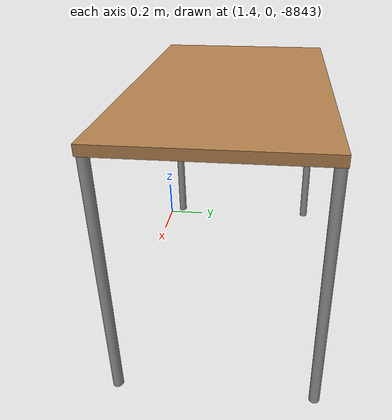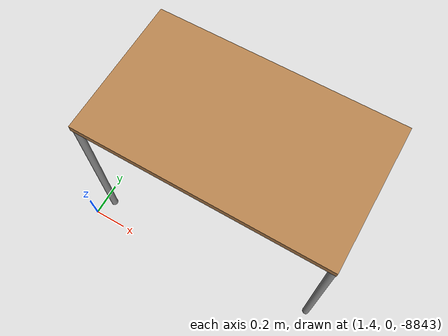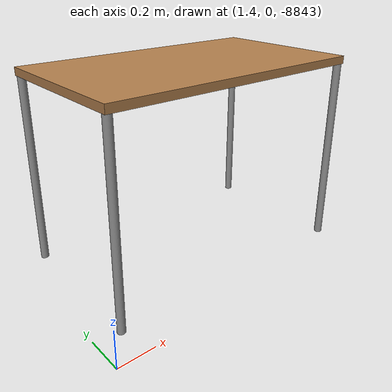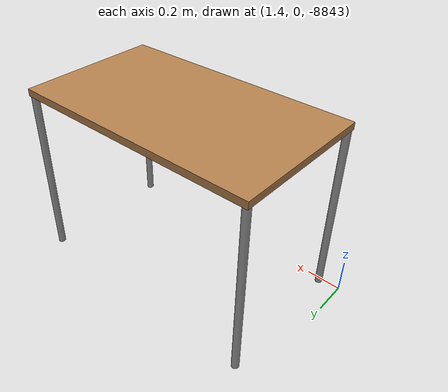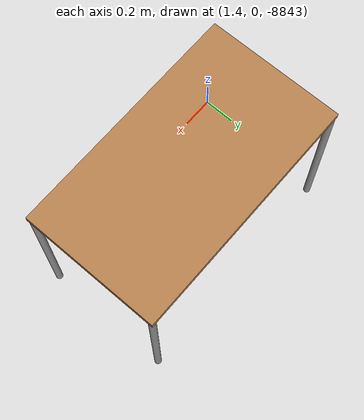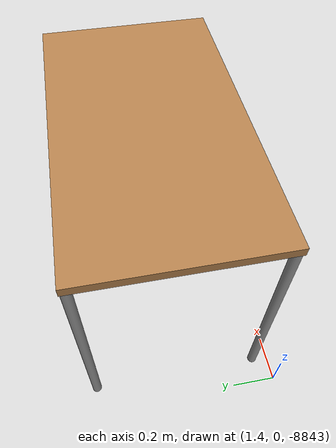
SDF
<sdf version="1.6">
 <world name="default">
  <model name="table_3_0">
   <link name="link">
    <inertial>
     <inertia><ixx>1</ixx><ixy>0</ixy><ixz>0</ixz><iyy>1</iyy><iyz>0</iyz><izz>1</izz></inertia>
     <mass>1</mass>
    </inertial>
    <visual name="back_right_leg">
     <pose>-0.68 -0.38 0.5 0 -0 0</pose>
     <geometry><cylinder><radius>0.02</radius><length>1</length></cylinder></geometry>
     <material>
      <script><uri>file://media/materials/scripts/gazebo.material</uri><name>Gazebo/Grey</name></script>
      <ambient>0.3 0.3 0.3 1</ambient>
      <diffuse>0.7 0.7 0.7 1</diffuse>
      <specular>0.01 0.01 0.01 1</specular>
      <emissive>0 0 0 1</emissive>
      <shader type="vertex"><normal_map>__default__</normal_map></shader>
     </material>
    </visual>
    <visual name="visual1">
     <pose>0 0 1 0 -0 0</pose>
     <geometry><box><size>1.4 0.8 0.04</size></box></geometry>
     <material>
      <script><uri>file://media/materials/scripts/gazebo.material</uri><name>Gazebo/Wood</name></script>
      <ambient>1 1 1 1</ambient>
      <diffuse>1 1 1 1</diffuse>
      <specular>0.2 0.2 0.2 1</specular>
      <emissive>0 0 0 1</emissive>
      <shader type="vertex"><normal_map>__default__</normal_map></shader>
     </material>
    </visual>
    <visual name="front_left_leg">
     <pose>0.68 0.38 0.5 0 -0 0</pose>
     <geometry><cylinder><radius>0.02</radius><length>1</length></cylinder></geometry>
     <material>
      <script><uri>file://media/materials/scripts/gazebo.material</uri><name>Gazebo/Grey</name></script>
      <ambient>0.3 0.3 0.3 1</ambient>
      <diffuse>0.7 0.7 0.7 1</diffuse>
      <specular>0.01 0.01 0.01 1</specular>
      <emissive>0 0 0 1</emissive>
      <shader type="vertex"><normal_map>__default__</normal_map></shader>
     </material>
    </visual>
    <visual name="front_right_leg">
     <pose>0.68 -0.38 0.5 0 -0 0</pose>
     <geometry><cylinder><radius>0.02</radius><length>1</length></cylinder></geometry>
     <material>
      <script><uri>file://media/materials/scripts/gazebo.material</uri><name>Gazebo/Grey</name></script>
      <ambient>0.3 0.3 0.3 1</ambient>
      <diffuse>0.7 0.7 0.7 1</diffuse>
      <specular>0.01 0.01 0.01 1</specular>
      <emissive>0 0 0 1</emissive>
      <shader type="vertex"><normal_map>__default__</normal_map></shader>
     </material>
    </visual>
    <visual name="back_left_leg">
     <pose>-0.68 0.38 0.5 0 -0 0</pose>
     <geometry><cylinder><radius>0.02</radius><length>1</length></cylinder></geometry>
     <material>
      <script><uri>file://media/materials/scripts/gazebo.material</uri><name>Gazebo/Grey</name></script>
      <ambient>0.3 0.3 0.3 1</ambient>
      <diffuse>0.7 0.7 0.7 1</diffuse>
      <specular>0.01 0.01 0.01 1</specular>
      <emissive>0 0 0 1</emissive>
      <shader type="vertex"><normal_map>__default__</normal_map></shader>
     </material>
    </visual>
    <collision name="surface">
     <pose>0 0 1 0 -0 0</pose>
     <geometry><box><size>1.5 0.8 0.03</size></box></geometry>
     <surface>
      <friction>
       <ode><mu>0.6</mu><mu2>0.6</mu2><fdir1>0 0 0</fdir1><slip1>0</slip1><slip2>0</slip2></ode>
       <torsional>
        <coefficient>1</coefficient>
        <patch_radius>0</patch_radius>
        <surface_radius>0</surface_radius>
        <use_patch_radius>1</use_patch_radius>
        <ode><slip>0</slip></ode>
       </torsional>
      </friction>
      <bounce><restitution_coefficient>0</restitution_coefficient><threshold>1e+06</threshold></bounce>
      <contact>
       <collide_without_contact>0</collide_without_contact>
       <collide_without_contact_bitmask>1</collide_without_contact_bitmask>
       <collide_bitmask>1</collide_bitmask>
       <ode>
        <soft_cfm>0</soft_cfm>
        <soft_erp>0.2</soft_erp>
        <kp>1e+13</kp>
        <kd>1</kd>
        <max_vel>0.01</max_vel>
        <min_depth>0</min_depth>
       </ode>
       <bullet>
        <split_impulse>1</split_impulse>
        <split_impulse_penetration_threshold>-0.01</split_impulse_penetration_threshold>
        <soft_cfm>0</soft_cfm>
        <soft_erp>0.2</soft_erp>
        <kp>1e+13</kp>
        <kd>1</kd>
       </bullet>
      </contact>
     </surface>
    </collision>
    <collision name="back_right_leg">
     <pose>-0.68 -0.38 0.5 0 -0 0</pose>
     <geometry><cylinder><radius>0.02</radius><length>1</length></cylinder></geometry>
     <surface>
      <friction>
       <ode><mu>1</mu><mu2>1</mu2><fdir1>0 0 0</fdir1><slip1>0</slip1><slip2>0</slip2></ode>
       <torsional>
        <coefficient>1</coefficient>
        <patch_radius>0</patch_radius>
        <surface_radius>0</surface_radius>
        <use_patch_radius>1</use_patch_radius>
        <ode><slip>0</slip></ode>
       </torsional>
      </friction>
      <bounce><restitution_coefficient>0</restitution_coefficient><threshold>1e+06</threshold></bounce>
      <contact>
       <collide_without_contact>0</collide_without_contact>
       <collide_without_contact_bitmask>1</collide_without_contact_bitmask>
       <collide_bitmask>1</collide_bitmask>
       <ode>
        <soft_cfm>0</soft_cfm>
        <soft_erp>0.2</soft_erp>
        <kp>1e+13</kp>
        <kd>1</kd>
        <max_vel>0.01</max_vel>
        <min_depth>0</min_depth>
       </ode>
       <bullet>
        <split_impulse>1</split_impulse>
        <split_impulse_penetration_threshold>-0.01</split_impulse_penetration_threshold>
        <soft_cfm>0</soft_cfm>
        <soft_erp>0.2</soft_erp>
        <kp>1e+13</kp>
        <kd>1</kd>
       </bullet>
      </contact>
     </surface>
    </collision>
    <collision name="front_left_leg">
     <pose>0.68 0.38 0.5 0 -0 0</pose>
     <geometry><cylinder><radius>0.02</radius><length>1</length></cylinder></geometry>
     <surface>
      <friction>
       <ode><mu>1</mu><mu2>1</mu2><fdir1>0 0 0</fdir1><slip1>0</slip1><slip2>0</slip2></ode>
       <torsional>
        <coefficient>1</coefficient>
        <patch_radius>0</patch_radius>
        <surface_radius>0</surface_radius>
        <use_patch_radius>1</use_patch_radius>
        <ode><slip>0</slip></ode>
       </torsional>
      </friction>
      <bounce><restitution_coefficient>0</restitution_coefficient><threshold>1e+06</threshold></bounce>
      <contact>
       <collide_without_contact>0</collide_without_contact>
       <collide_without_contact_bitmask>1</collide_without_contact_bitmask>
       <collide_bitmask>1</collide_bitmask>
       <ode>
        <soft_cfm>0</soft_cfm>
        <soft_erp>0.2</soft_erp>
        <kp>1e+13</kp>
        <kd>1</kd>
        <max_vel>0.01</max_vel>
        <min_depth>0</min_depth>
       </ode>
       <bullet>
        <split_impulse>1</split_impulse>
        <split_impulse_penetration_threshold>-0.01</split_impulse_penetration_threshold>
        <soft_cfm>0</soft_cfm>
        <soft_erp>0.2</soft_erp>
        <kp>1e+13</kp>
        <kd>1</kd>
       </bullet>
      </contact>
     </surface>
    </collision>
    <collision name="front_right_leg">
     <pose>0.68 -0.38 0.5 0 -0 0</pose>
     <geometry><cylinder><radius>0.02</radius><length>1</length></cylinder></geometry>
     <surface>
      <friction>
       <ode><mu>1</mu><mu2>1</mu2><fdir1>0 0 0</fdir1><slip1>0</slip1><slip2>0</slip2></ode>
       <torsional>
        <coefficient>1</coefficient>
        <patch_radius>0</patch_radius>
        <surface_radius>0</surface_radius>
        <use_patch_radius>1</use_patch_radius>
        <ode><slip>0</slip></ode>
       </torsional>
      </friction>
      <bounce><restitution_coefficient>0</restitution_coefficient><threshold>1e+06</threshold></bounce>
      <contact>
       <collide_without_contact>0</collide_without_contact>
       <collide_without_contact_bitmask>1</collide_without_contact_bitmask>
       <collide_bitmask>1</collide_bitmask>
       <ode>
        <soft_cfm>0</soft_cfm>
        <soft_erp>0.2</soft_erp>
        <kp>1e+13</kp>
        <kd>1</kd>
        <max_vel>0.01</max_vel>
        <min_depth>0</min_depth>
       </ode>
       <bullet>
        <split_impulse>1</split_impulse>
        <split_impulse_penetration_threshold>-0.01</split_impulse_penetration_threshold>
        <soft_cfm>0</soft_cfm>
        <soft_erp>0.2</soft_erp>
        <kp>1e+13</kp>
        <kd>1</kd>
       </bullet>
      </contact>
     </surface>
    </collision>
    <collision name="back_left_leg">
     <pose>-0.68 0.38 0.5 0 -0 0</pose>
     <geometry><cylinder><radius>0.02</radius><length>1</length></cylinder></geometry>
     <surface>
      <friction>
       <ode><mu>1</mu><mu2>1</mu2><fdir1>0 0 0</fdir1><slip1>0</slip1><slip2>0</slip2></ode>
       <torsional>
        <coefficient>1</coefficient>
        <patch_radius>0</patch_radius>
        <surface_radius>0</surface_radius>
        <use_patch_radius>1</use_patch_radius>
        <ode><slip>0</slip></ode>
       </torsional>
      </friction>
      <bounce><restitution_coefficient>0</restitution_coefficient><threshold>1e+06</threshold></bounce>
      <contact>
       <collide_without_contact>0</collide_without_contact>
       <collide_without_contact_bitmask>1</collide_without_contact_bitmask>
       <collide_bitmask>1</collide_bitmask>
       <ode>
        <soft_cfm>0</soft_cfm>
        <soft_erp>0.2</soft_erp>
        <kp>1e+13</kp>
        <kd>1</kd>
        <max_vel>0.01</max_vel>
        <min_depth>0</min_depth>
       </ode>
       <bullet>
        <split_impulse>1</split_impulse>
        <split_impulse_penetration_threshold>-0.01</split_impulse_penetration_threshold>
        <soft_cfm>0</soft_cfm>
        <soft_erp>0.2</soft_erp>
        <kp>1e+13</kp>
        <kd>1</kd>
       </bullet>
      </contact>
     </surface>
    </collision>
   </link>
   <static>0</static>
   <pose>2.16887 0.475057 -8842.92 0 -0 0</pose>
  </model>
 </world>
</sdf>
